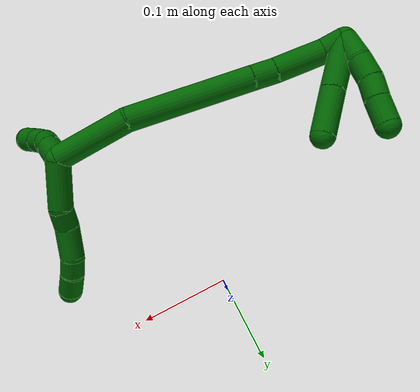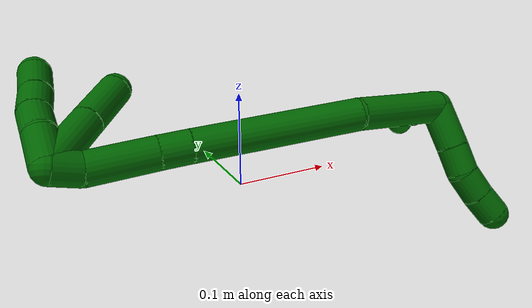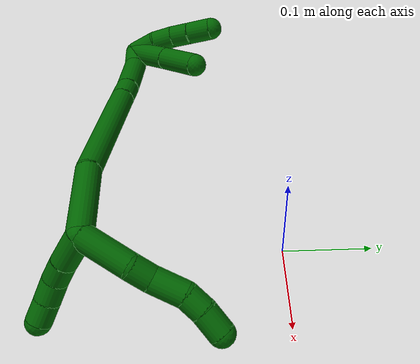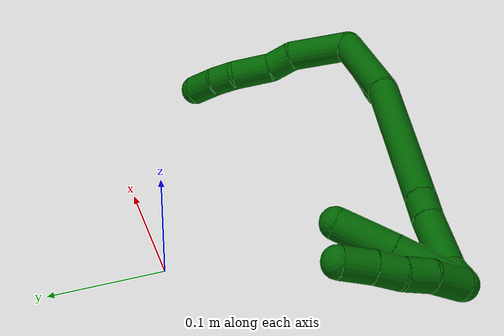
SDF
<sdf version="1.7">
 <world name="default">
  <model name="6">
   <static>0</static>
   <link name="6">
    <collision name="collision-cylinder-e_1_2_8">
     <pose>0.003341 0.02377 0.007497 -1.26528 0.133237 -0.097752</pose>
     <geometry><cylinder><radius>0.0125</radius><length>0.050293</length></cylinder></geometry>
     <surface>
      <friction><ode><mu>1.16</mu><mu2>1.16</mu2><slip1>0</slip1><slip2>0</slip2></ode></friction>
      <contact><ode><kp>1e+06</kp><kd>1</kd><max_vel>0</max_vel><min_depth>0.001</min_depth></ode></contact>
     </surface>
    </collision>
    <visual name="visual-cylinder-e_1_2_8">
     <pose>0.003341 0.02377 0.007497 -1.26528 0.133237 -0.097752</pose>
     <geometry><cylinder><radius>0.0125</radius><length>0.050293</length></cylinder></geometry>
     <material><ambient>0 0.392157 0.003922 1</ambient></material>
    </visual>
    <collision name="collision-cylinder-e_2_8_9">
     <pose>0.006174 0.05832 0.015476 -1.52605 -0.047003 0.044946</pose>
     <geometry><cylinder><radius>0.0125</radius><length>0.021607</length></cylinder></geometry>
     <surface>
      <friction><ode><mu>1.16</mu><mu2>1.16</mu2><slip1>0</slip1><slip2>0</slip2></ode></friction>
      <contact><ode><kp>1e+06</kp><kd>1</kd><max_vel>0</max_vel><min_depth>0.001</min_depth></ode></contact>
     </surface>
    </collision>
    <visual name="visual-cylinder-e_2_8_9">
     <pose>0.006174 0.05832 0.015476 -1.52605 -0.047003 0.044946</pose>
     <geometry><cylinder><radius>0.0125</radius><length>0.021607</length></cylinder></geometry>
     <material><ambient>0 0.392157 0.003922 1</ambient></material>
    </visual>
    <collision name="collision-cylinder-e_3_9_10">
     <pose>0.005834 0.084606 0.02141 -1.23273 0.010248 -0.00726</pose>
     <geometry><cylinder><radius>0.0125</radius><length>0.032873</length></cylinder></geometry>
     <surface>
      <friction><ode><mu>1.16</mu><mu2>1.16</mu2><slip1>0</slip1><slip2>0</slip2></ode></friction>
      <contact><ode><kp>1e+06</kp><kd>1</kd><max_vel>0</max_vel><min_depth>0.001</min_depth></ode></contact>
     </surface>
    </collision>
    <visual name="visual-cylinder-e_3_9_10">
     <pose>0.005834 0.084606 0.02141 -1.23273 0.010248 -0.00726</pose>
     <geometry><cylinder><radius>0.0125</radius><length>0.032873</length></cylinder></geometry>
     <material><ambient>0 0.392157 0.003922 1</ambient></material>
    </visual>
    <collision name="collision-cylinder-e_4_10_11">
     <pose>0.008197 0.109857 0.027868 -1.46784 0.220306 -0.198867</pose>
     <geometry><cylinder><radius>0.0125</radius><length>0.020079</length></cylinder></geometry>
     <surface>
      <friction><ode><mu>1.16</mu><mu2>1.16</mu2><slip1>0</slip1><slip2>0</slip2></ode></friction>
      <contact><ode><kp>1e+06</kp><kd>1</kd><max_vel>0</max_vel><min_depth>0.001</min_depth></ode></contact>
     </surface>
    </collision>
    <visual name="visual-cylinder-e_4_10_11">
     <pose>0.008197 0.109857 0.027868 -1.46784 0.220306 -0.198867</pose>
     <geometry><cylinder><radius>0.0125</radius><length>0.020079</length></cylinder></geometry>
     <material><ambient>0 0.392157 0.003922 1</ambient></material>
    </visual>
    <collision name="collision-cylinder-e_5_11_6">
     <pose>0.01416 0.131585 0.028336 -1.61573 0.304454 -0.318219</pose>
     <geometry><cylinder><radius>0.0125</radius><length>0.025147</length></cylinder></geometry>
     <surface>
      <friction><ode><mu>1.16</mu><mu2>1.16</mu2><slip1>0</slip1><slip2>0</slip2></ode></friction>
      <contact><ode><kp>1e+06</kp><kd>1</kd><max_vel>0</max_vel><min_depth>0.001</min_depth></ode></contact>
     </surface>
    </collision>
    <visual name="visual-cylinder-e_5_11_6">
     <pose>0.01416 0.131585 0.028336 -1.61573 0.304454 -0.318219</pose>
     <geometry><cylinder><radius>0.0125</radius><length>0.025147</length></cylinder></geometry>
     <material><ambient>0 0.392157 0.003922 1</ambient></material>
    </visual>
    <collision name="collision-cylinder-e_1_2_12">
     <pose>0.006359 0.002322 -0.015688 -2.99465 0.381359 -2.41298</pose>
     <geometry><cylinder><radius>0.0125</radius><length>0.034174</length></cylinder></geometry>
     <surface>
      <friction><ode><mu>1.16</mu><mu2>1.16</mu2><slip1>0</slip1><slip2>0</slip2></ode></friction>
      <contact><ode><kp>1e+06</kp><kd>1</kd><max_vel>0</max_vel><min_depth>0.001</min_depth></ode></contact>
     </surface>
    </collision>
    <visual name="visual-cylinder-e_1_2_12">
     <pose>0.006359 0.002322 -0.015688 -2.99465 0.381359 -2.41298</pose>
     <geometry><cylinder><radius>0.0125</radius><length>0.034174</length></cylinder></geometry>
     <material><ambient>0 0.392157 0.003922 1</ambient></material>
    </visual>
    <collision name="collision-cylinder-e_2_12_13">
     <pose>0.016797 0.006765 -0.041586 -2.93681 0.372833 -2.14391</pose>
     <geometry><cylinder><radius>0.0125</radius><length>0.022392</length></cylinder></geometry>
     <surface>
      <friction><ode><mu>1.16</mu><mu2>1.16</mu2><slip1>0</slip1><slip2>0</slip2></ode></friction>
      <contact><ode><kp>1e+06</kp><kd>1</kd><max_vel>0</max_vel><min_depth>0.001</min_depth></ode></contact>
     </surface>
    </collision>
    <visual name="visual-cylinder-e_2_12_13">
     <pose>0.016797 0.006765 -0.041586 -2.93681 0.372833 -2.14391</pose>
     <geometry><cylinder><radius>0.0125</radius><length>0.022392</length></cylinder></geometry>
     <material><ambient>0 0.392157 0.003922 1</ambient></material>
    </visual>
    <collision name="collision-cylinder-e_3_13_14">
     <pose>0.027451 0.011868 -0.06013 -2.79792 0.63886 -2.17518</pose>
     <geometry><cylinder><radius>0.0125</radius><length>0.022054</length></cylinder></geometry>
     <surface>
      <friction><ode><mu>1.16</mu><mu2>1.16</mu2><slip1>0</slip1><slip2>0</slip2></ode></friction>
      <contact><ode><kp>1e+06</kp><kd>1</kd><max_vel>0</max_vel><min_depth>0.001</min_depth></ode></contact>
     </surface>
    </collision>
    <visual name="visual-cylinder-e_3_13_14">
     <pose>0.027451 0.011868 -0.06013 -2.79792 0.63886 -2.17518</pose>
     <geometry><cylinder><radius>0.0125</radius><length>0.022054</length></cylinder></geometry>
     <material><ambient>0 0.392157 0.003922 1</ambient></material>
    </visual>
    <collision name="collision-cylinder-e_4_14_5">
     <pose>0.041163 0.0176 -0.075932 -2.78886 0.731094 -2.27005</pose>
     <geometry><cylinder><radius>0.0125</radius><length>0.02138</length></cylinder></geometry>
     <surface>
      <friction><ode><mu>1.16</mu><mu2>1.16</mu2><slip1>0</slip1><slip2>0</slip2></ode></friction>
      <contact><ode><kp>1e+06</kp><kd>1</kd><max_vel>0</max_vel><min_depth>0.001</min_depth></ode></contact>
     </surface>
    </collision>
    <visual name="visual-cylinder-e_4_14_5">
     <pose>0.041163 0.0176 -0.075932 -2.78886 0.731094 -2.27005</pose>
     <geometry><cylinder><radius>0.0125</radius><length>0.02138</length></cylinder></geometry>
     <material><ambient>0 0.392157 0.003922 1</ambient></material>
    </visual>
    <collision name="collision-cylinder-e_1_2_15">
     <pose>-0.035187 -0.012161 -0.007016 2.09408 -1.19114 -1.72994</pose>
     <geometry><cylinder><radius>0.0125</radius><length>0.075769</length></cylinder></geometry>
     <surface>
      <friction><ode><mu>1.16</mu><mu2>1.16</mu2><slip1>0</slip1><slip2>0</slip2></ode></friction>
      <contact><ode><kp>1e+06</kp><kd>1</kd><max_vel>0</max_vel><min_depth>0.001</min_depth></ode></contact>
     </surface>
    </collision>
    <visual name="visual-cylinder-e_1_2_15">
     <pose>-0.035187 -0.012161 -0.007016 2.09408 -1.19114 -1.72994</pose>
     <geometry><cylinder><radius>0.0125</radius><length>0.075769</length></cylinder></geometry>
     <material><ambient>0 0.392157 0.003922 1</ambient></material>
    </visual>
    <collision name="collision-cylinder-e_2_15_16">
     <pose>-0.132202 -0.030613 -0.027931 2.71656 -1.32888 -2.60395</pose>
     <geometry><cylinder><radius>0.0125</radius><length>0.127366</length></cylinder></geometry>
     <surface>
      <friction><ode><mu>1.16</mu><mu2>1.16</mu2><slip1>0</slip1><slip2>0</slip2></ode></friction>
      <contact><ode><kp>1e+06</kp><kd>1</kd><max_vel>0</max_vel><min_depth>0.001</min_depth></ode></contact>
     </surface>
    </collision>
    <visual name="visual-cylinder-e_2_15_16">
     <pose>-0.132202 -0.030613 -0.027931 2.71656 -1.32888 -2.60395</pose>
     <geometry><cylinder><radius>0.0125</radius><length>0.127366</length></cylinder></geometry>
     <material><ambient>0 0.392157 0.003922 1</ambient></material>
    </visual>
    <collision name="collision-cylinder-e_3_16_17">
     <pose>-0.205223 -0.037884 -0.044445 2.78302 -1.32628 -2.68565</pose>
     <geometry><cylinder><radius>0.0125</radius><length>0.023072</length></cylinder></geometry>
     <surface>
      <friction><ode><mu>1.16</mu><mu2>1.16</mu2><slip1>0</slip1><slip2>0</slip2></ode></friction>
      <contact><ode><kp>1e+06</kp><kd>1</kd><max_vel>0</max_vel><min_depth>0.001</min_depth></ode></contact>
     </surface>
    </collision>
    <visual name="visual-cylinder-e_3_16_17">
     <pose>-0.205223 -0.037884 -0.044445 2.78302 -1.32628 -2.68565</pose>
     <geometry><cylinder><radius>0.0125</radius><length>0.023072</length></cylinder></geometry>
     <material><ambient>0 0.392157 0.003922 1</ambient></material>
    </visual>
    <collision name="collision-cylinder-e_4_17_18">
     <pose>-0.241098 -0.04258 -0.053582 2.62378 -1.27557 -2.45515</pose>
     <geometry><cylinder><radius>0.0125</radius><length>0.051596</length></cylinder></geometry>
     <surface>
      <friction><ode><mu>1.16</mu><mu2>1.16</mu2><slip1>0</slip1><slip2>0</slip2></ode></friction>
      <contact><ode><kp>1e+06</kp><kd>1</kd><max_vel>0</max_vel><min_depth>0.001</min_depth></ode></contact>
     </surface>
    </collision>
    <visual name="visual-cylinder-e_4_17_18">
     <pose>-0.241098 -0.04258 -0.053582 2.62378 -1.27557 -2.45515</pose>
     <geometry><cylinder><radius>0.0125</radius><length>0.051596</length></cylinder></geometry>
     <material><ambient>0 0.392157 0.003922 1</ambient></material>
    </visual>
    <collision name="collision-cylinder-e_5_18_1">
     <pose>-0.275995 -0.050631 -0.060287 1.61296 -1.16903 -1.20816</pose>
     <geometry><cylinder><radius>0.0125</radius><length>0.022198</length></cylinder></geometry>
     <surface>
      <friction><ode><mu>1.16</mu><mu2>1.16</mu2><slip1>0</slip1><slip2>0</slip2></ode></friction>
      <contact><ode><kp>1e+06</kp><kd>1</kd><max_vel>0</max_vel><min_depth>0.001</min_depth></ode></contact>
     </surface>
    </collision>
    <visual name="visual-cylinder-e_5_18_1">
     <pose>-0.275995 -0.050631 -0.060287 1.61296 -1.16903 -1.20816</pose>
     <geometry><cylinder><radius>0.0125</radius><length>0.022198</length></cylinder></geometry>
     <material><ambient>0 0.392157 0.003922 1</ambient></material>
    </visual>
    <collision name="collision-cylinder-e_1_1_19">
     <pose>-0.276677 -0.039352 -0.040836 -0.671901 0.363153 -0.128045</pose>
     <geometry><cylinder><radius>0.0125</radius><length>0.053673</length></cylinder></geometry>
     <surface>
      <friction><ode><mu>1.16</mu><mu2>1.16</mu2><slip1>0</slip1><slip2>0</slip2></ode></friction>
      <contact><ode><kp>1e+06</kp><kd>1</kd><max_vel>0</max_vel><min_depth>0.001</min_depth></ode></contact>
     </surface>
    </collision>
    <visual name="visual-cylinder-e_1_1_19">
     <pose>-0.276677 -0.039352 -0.040836 -0.671901 0.363153 -0.128045</pose>
     <geometry><cylinder><radius>0.0125</radius><length>0.053673</length></cylinder></geometry>
     <material><ambient>0 0.392157 0.003922 1</ambient></material>
    </visual>
    <collision name="collision-cylinder-e_2_19_4">
     <pose>-0.259277 -0.00961 -0.004615 -0.705437 0.346495 -0.128663</pose>
     <geometry><cylinder><radius>0.0125</radius><length>0.046327</length></cylinder></geometry>
     <surface>
      <friction><ode><mu>1.16</mu><mu2>1.16</mu2><slip1>0</slip1><slip2>0</slip2></ode></friction>
      <contact><ode><kp>1e+06</kp><kd>1</kd><max_vel>0</max_vel><min_depth>0.001</min_depth></ode></contact>
     </surface>
    </collision>
    <visual name="visual-cylinder-e_2_19_4">
     <pose>-0.259277 -0.00961 -0.004615 -0.705437 0.346495 -0.128663</pose>
     <geometry><cylinder><radius>0.0125</radius><length>0.046327</length></cylinder></geometry>
     <material><ambient>0 0.392157 0.003922 1</ambient></material>
    </visual>
    <collision name="collision-cylinder-e_1_1_20">
     <pose>-0.290394 -0.049704 -0.048011 -0.399739 -0.300063 0.061226</pose>
     <geometry><cylinder><radius>0.0125</radius><length>0.028315</length></cylinder></geometry>
     <surface>
      <friction><ode><mu>1.16</mu><mu2>1.16</mu2><slip1>0</slip1><slip2>0</slip2></ode></friction>
      <contact><ode><kp>1e+06</kp><kd>1</kd><max_vel>0</max_vel><min_depth>0.001</min_depth></ode></contact>
     </surface>
    </collision>
    <visual name="visual-cylinder-e_1_1_20">
     <pose>-0.290394 -0.049704 -0.048011 -0.399739 -0.300063 0.061226</pose>
     <geometry><cylinder><radius>0.0125</radius><length>0.028315</length></cylinder></geometry>
     <material><ambient>0 0.392157 0.003922 1</ambient></material>
    </visual>
    <collision name="collision-cylinder-e_2_20_21">
     <pose>-0.298174 -0.037997 -0.026517 -0.619487 -0.31329 0.101009</pose>
     <geometry><cylinder><radius>0.0125</radius><length>0.02333</length></cylinder></geometry>
     <surface>
      <friction><ode><mu>1.16</mu><mu2>1.16</mu2><slip1>0</slip1><slip2>0</slip2></ode></friction>
      <contact><ode><kp>1e+06</kp><kd>1</kd><max_vel>0</max_vel><min_depth>0.001</min_depth></ode></contact>
     </surface>
    </collision>
    <visual name="visual-cylinder-e_2_20_21">
     <pose>-0.298174 -0.037997 -0.026517 -0.619487 -0.31329 0.101009</pose>
     <geometry><cylinder><radius>0.0125</radius><length>0.02333</length></cylinder></geometry>
     <material><ambient>0 0.392157 0.003922 1</ambient></material>
    </visual>
    <collision name="collision-cylinder-e_3_21_22">
     <pose>-0.302899 -0.025384 -0.008638 -0.609117 -0.104398 0.032843</pose>
     <geometry><cylinder><radius>0.0125</radius><length>0.021685</length></cylinder></geometry>
     <surface>
      <friction><ode><mu>1.16</mu><mu2>1.16</mu2><slip1>0</slip1><slip2>0</slip2></ode></friction>
      <contact><ode><kp>1e+06</kp><kd>1</kd><max_vel>0</max_vel><min_depth>0.001</min_depth></ode></contact>
     </surface>
    </collision>
    <visual name="visual-cylinder-e_3_21_22">
     <pose>-0.302899 -0.025384 -0.008638 -0.609117 -0.104398 0.032843</pose>
     <geometry><cylinder><radius>0.0125</radius><length>0.021685</length></cylinder></geometry>
     <material><ambient>0 0.392157 0.003922 1</ambient></material>
    </visual>
    <collision name="collision-cylinder-e_4_22_3">
     <pose>-0.306534 -0.011318 0.010655 -0.647113 -0.189005 0.063549</pose>
     <geometry><cylinder><radius>0.0125</radius><length>0.026671</length></cylinder></geometry>
     <surface>
      <friction><ode><mu>1.16</mu><mu2>1.16</mu2><slip1>0</slip1><slip2>0</slip2></ode></friction>
      <contact><ode><kp>1e+06</kp><kd>1</kd><max_vel>0</max_vel><min_depth>0.001</min_depth></ode></contact>
     </surface>
    </collision>
    <visual name="visual-cylinder-e_4_22_3">
     <pose>-0.306534 -0.011318 0.010655 -0.647113 -0.189005 0.063549</pose>
     <geometry><cylinder><radius>0.0125</radius><length>0.026671</length></cylinder></geometry>
     <material><ambient>0 0.392157 0.003922 1</ambient></material>
    </visual>
    <collision name="collision-sphere-3">
     <pose>-0.30904 -0.003422 0.021105 0 -0 0</pose>
     <geometry><sphere><radius>0.0125</radius></sphere></geometry>
     <surface>
      <friction><ode><mu>1.16</mu><mu2>1.16</mu2><slip1>0</slip1><slip2>0</slip2></ode></friction>
      <contact><ode><kp>1e+06</kp><kd>1</kd><max_vel>0</max_vel><min_depth>0.001</min_depth></ode></contact>
     </surface>
    </collision>
    <visual name="visual-sphere-3">
     <pose>-0.30904 -0.003422 0.021105 0 -0 0</pose>
     <geometry><sphere><radius>0.0125</radius></sphere></geometry>
     <material><ambient>0 0.392157 0.003922 1</ambient></material>
    </visual>
    <collision name="collision-sphere-22">
     <pose>-0.304029 -0.019215 0.000206 0 -0 0</pose>
     <geometry><sphere><radius>0.0125</radius></sphere></geometry>
     <surface>
      <friction><ode><mu>1.16</mu><mu2>1.16</mu2><slip1>0</slip1><slip2>0</slip2></ode></friction>
      <contact><ode><kp>1e+06</kp><kd>1</kd><max_vel>0</max_vel><min_depth>0.001</min_depth></ode></contact>
     </surface>
    </collision>
    <visual name="visual-sphere-22">
     <pose>-0.304029 -0.019215 0.000206 0 -0 0</pose>
     <geometry><sphere><radius>0.0125</radius></sphere></geometry>
     <material><ambient>0 0.392157 0.003922 1</ambient></material>
    </visual>
    <collision name="collision-sphere-21">
     <pose>-0.301769 -0.031554 -0.017482 0 -0 0</pose>
     <geometry><sphere><radius>0.0125</radius></sphere></geometry>
     <surface>
      <friction><ode><mu>1.16</mu><mu2>1.16</mu2><slip1>0</slip1><slip2>0</slip2></ode></friction>
      <contact><ode><kp>1e+06</kp><kd>1</kd><max_vel>0</max_vel><min_depth>0.001</min_depth></ode></contact>
     </surface>
    </collision>
    <visual name="visual-sphere-21">
     <pose>-0.301769 -0.031554 -0.017482 0 -0 0</pose>
     <geometry><sphere><radius>0.0125</radius></sphere></geometry>
     <material><ambient>0 0.392157 0.003922 1</ambient></material>
    </visual>
    <collision name="collision-sphere-20">
     <pose>-0.294579 -0.04444 -0.035553 0 -0 0</pose>
     <geometry><sphere><radius>0.0125</radius></sphere></geometry>
     <surface>
      <friction><ode><mu>1.16</mu><mu2>1.16</mu2><slip1>0</slip1><slip2>0</slip2></ode></friction>
      <contact><ode><kp>1e+06</kp><kd>1</kd><max_vel>0</max_vel><min_depth>0.001</min_depth></ode></contact>
     </surface>
    </collision>
    <visual name="visual-sphere-20">
     <pose>-0.294579 -0.04444 -0.035553 0 -0 0</pose>
     <geometry><sphere><radius>0.0125</radius></sphere></geometry>
     <material><ambient>0 0.392157 0.003922 1</ambient></material>
    </visual>
    <collision name="collision-sphere-4">
     <pose>-0.251411 0.004515 0.011971 0 -0 0</pose>
     <geometry><sphere><radius>0.0125</radius></sphere></geometry>
     <surface>
      <friction><ode><mu>1.16</mu><mu2>1.16</mu2><slip1>0</slip1><slip2>0</slip2></ode></friction>
      <contact><ode><kp>1e+06</kp><kd>1</kd><max_vel>0</max_vel><min_depth>0.001</min_depth></ode></contact>
     </surface>
    </collision>
    <visual name="visual-sphere-4">
     <pose>-0.251411 0.004515 0.011971 0 -0 0</pose>
     <geometry><sphere><radius>0.0125</radius></sphere></geometry>
     <material><ambient>0 0.392157 0.003922 1</ambient></material>
    </visual>
    <collision name="collision-sphere-6">
     <pose>0.017929 0.143568 0.027798 0 -0 0</pose>
     <geometry><sphere><radius>0.0125</radius></sphere></geometry>
     <surface>
      <friction><ode><mu>1.16</mu><mu2>1.16</mu2><slip1>0</slip1><slip2>0</slip2></ode></friction>
      <contact><ode><kp>1e+06</kp><kd>1</kd><max_vel>0</max_vel><min_depth>0.001</min_depth></ode></contact>
     </surface>
    </collision>
    <visual name="visual-sphere-6">
     <pose>0.017929 0.143568 0.027798 0 -0 0</pose>
     <geometry><sphere><radius>0.0125</radius></sphere></geometry>
     <material><ambient>0 0.392157 0.003922 1</ambient></material>
    </visual>
    <collision name="collision-sphere-11">
     <pose>0.010391 0.119602 0.028875 0 -0 0</pose>
     <geometry><sphere><radius>0.0125</radius></sphere></geometry>
     <surface>
      <friction><ode><mu>1.16</mu><mu2>1.16</mu2><slip1>0</slip1><slip2>0</slip2></ode></friction>
      <contact><ode><kp>1e+06</kp><kd>1</kd><max_vel>0</max_vel><min_depth>0.001</min_depth></ode></contact>
     </surface>
    </collision>
    <visual name="visual-sphere-11">
     <pose>0.010391 0.119602 0.028875 0 -0 0</pose>
     <geometry><sphere><radius>0.0125</radius></sphere></geometry>
     <material><ambient>0 0.392157 0.003922 1</ambient></material>
    </visual>
    <collision name="collision-sphere-10">
     <pose>0.006003 0.100112 0.026861 0 -0 0</pose>
     <geometry><sphere><radius>0.0125</radius></sphere></geometry>
     <surface>
      <friction><ode><mu>1.16</mu><mu2>1.16</mu2><slip1>0</slip1><slip2>0</slip2></ode></friction>
      <contact><ode><kp>1e+06</kp><kd>1</kd><max_vel>0</max_vel><min_depth>0.001</min_depth></ode></contact>
     </surface>
    </collision>
    <visual name="visual-sphere-10">
     <pose>0.006003 0.100112 0.026861 0 -0 0</pose>
     <geometry><sphere><radius>0.0125</radius></sphere></geometry>
     <material><ambient>0 0.392157 0.003922 1</ambient></material>
    </visual>
    <collision name="collision-sphere-9">
     <pose>0.005666 0.0691 0.015959 0 -0 0</pose>
     <geometry><sphere><radius>0.0125</radius></sphere></geometry>
     <surface>
      <friction><ode><mu>1.16</mu><mu2>1.16</mu2><slip1>0</slip1><slip2>0</slip2></ode></friction>
      <contact><ode><kp>1e+06</kp><kd>1</kd><max_vel>0</max_vel><min_depth>0.001</min_depth></ode></contact>
     </surface>
    </collision>
    <visual name="visual-sphere-9">
     <pose>0.005666 0.0691 0.015959 0 -0 0</pose>
     <geometry><sphere><radius>0.0125</radius></sphere></geometry>
     <material><ambient>0 0.392157 0.003922 1</ambient></material>
    </visual>
    <collision name="collision-sphere-2">
     <geometry><sphere><radius>0.0125</radius></sphere></geometry>
     <surface>
      <friction><ode><mu>1.16</mu><mu2>1.16</mu2><slip1>0</slip1><slip2>0</slip2></ode></friction>
      <contact><ode><kp>1e+06</kp><kd>1</kd><max_vel>0</max_vel><min_depth>0.001</min_depth></ode></contact>
     </surface>
    </collision>
    <visual name="visual-sphere-2">
     <geometry><sphere><radius>0.0125</radius></sphere></geometry>
     <material><ambient>0 0.392157 0.003922 1</ambient></material>
    </visual>
    <collision name="collision-sphere-19">
     <pose>-0.267144 -0.023736 -0.021202 0 -0 0</pose>
     <geometry><sphere><radius>0.0125</radius></sphere></geometry>
     <surface>
      <friction><ode><mu>1.16</mu><mu2>1.16</mu2><slip1>0</slip1><slip2>0</slip2></ode></friction>
      <contact><ode><kp>1e+06</kp><kd>1</kd><max_vel>0</max_vel><min_depth>0.001</min_depth></ode></contact>
     </surface>
    </collision>
    <visual name="visual-sphere-19">
     <pose>-0.267144 -0.023736 -0.021202 0 -0 0</pose>
     <geometry><sphere><radius>0.0125</radius></sphere></geometry>
     <material><ambient>0 0.392157 0.003922 1</ambient></material>
    </visual>
    <collision name="collision-sphere-8">
     <pose>0.006681 0.047539 0.014994 0 -0 0</pose>
     <geometry><sphere><radius>0.0125</radius></sphere></geometry>
     <surface>
      <friction><ode><mu>1.16</mu><mu2>1.16</mu2><slip1>0</slip1><slip2>0</slip2></ode></friction>
      <contact><ode><kp>1e+06</kp><kd>1</kd><max_vel>0</max_vel><min_depth>0.001</min_depth></ode></contact>
     </surface>
    </collision>
    <visual name="visual-sphere-8">
     <pose>0.006681 0.047539 0.014994 0 -0 0</pose>
     <geometry><sphere><radius>0.0125</radius></sphere></geometry>
     <material><ambient>0 0.392157 0.003922 1</ambient></material>
    </visual>
    <collision name="collision-sphere-12">
     <pose>0.012719 0.004644 -0.031377 0 -0 0</pose>
     <geometry><sphere><radius>0.0125</radius></sphere></geometry>
     <surface>
      <friction><ode><mu>1.16</mu><mu2>1.16</mu2><slip1>0</slip1><slip2>0</slip2></ode></friction>
      <contact><ode><kp>1e+06</kp><kd>1</kd><max_vel>0</max_vel><min_depth>0.001</min_depth></ode></contact>
     </surface>
    </collision>
    <visual name="visual-sphere-12">
     <pose>0.012719 0.004644 -0.031377 0 -0 0</pose>
     <geometry><sphere><radius>0.0125</radius></sphere></geometry>
     <material><ambient>0 0.392157 0.003922 1</ambient></material>
    </visual>
    <collision name="collision-sphere-13">
     <pose>0.020875 0.008885 -0.051795 0 -0 0</pose>
     <geometry><sphere><radius>0.0125</radius></sphere></geometry>
     <surface>
      <friction><ode><mu>1.16</mu><mu2>1.16</mu2><slip1>0</slip1><slip2>0</slip2></ode></friction>
      <contact><ode><kp>1e+06</kp><kd>1</kd><max_vel>0</max_vel><min_depth>0.001</min_depth></ode></contact>
     </surface>
    </collision>
    <visual name="visual-sphere-13">
     <pose>0.020875 0.008885 -0.051795 0 -0 0</pose>
     <geometry><sphere><radius>0.0125</radius></sphere></geometry>
     <material><ambient>0 0.392157 0.003922 1</ambient></material>
    </visual>
    <collision name="collision-sphere-14">
     <pose>0.034026 0.01485 -0.068464 0 -0 0</pose>
     <geometry><sphere><radius>0.0125</radius></sphere></geometry>
     <surface>
      <friction><ode><mu>1.16</mu><mu2>1.16</mu2><slip1>0</slip1><slip2>0</slip2></ode></friction>
      <contact><ode><kp>1e+06</kp><kd>1</kd><max_vel>0</max_vel><min_depth>0.001</min_depth></ode></contact>
     </surface>
    </collision>
    <visual name="visual-sphere-14">
     <pose>0.034026 0.01485 -0.068464 0 -0 0</pose>
     <geometry><sphere><radius>0.0125</radius></sphere></geometry>
     <material><ambient>0 0.392157 0.003922 1</ambient></material>
    </visual>
    <collision name="collision-sphere-5">
     <pose>0.048301 0.020349 -0.0834 0 -0 0</pose>
     <geometry><sphere><radius>0.0125</radius></sphere></geometry>
     <surface>
      <friction><ode><mu>1.16</mu><mu2>1.16</mu2><slip1>0</slip1><slip2>0</slip2></ode></friction>
      <contact><ode><kp>1e+06</kp><kd>1</kd><max_vel>0</max_vel><min_depth>0.001</min_depth></ode></contact>
     </surface>
    </collision>
    <visual name="visual-sphere-5">
     <pose>0.048301 0.020349 -0.0834 0 -0 0</pose>
     <geometry><sphere><radius>0.0125</radius></sphere></geometry>
     <material><ambient>0 0.392157 0.003922 1</ambient></material>
    </visual>
    <collision name="collision-sphere-15">
     <pose>-0.070373 -0.024323 -0.014033 0 -0 0</pose>
     <geometry><sphere><radius>0.0125</radius></sphere></geometry>
     <surface>
      <friction><ode><mu>1.16</mu><mu2>1.16</mu2><slip1>0</slip1><slip2>0</slip2></ode></friction>
      <contact><ode><kp>1e+06</kp><kd>1</kd><max_vel>0</max_vel><min_depth>0.001</min_depth></ode></contact>
     </surface>
    </collision>
    <visual name="visual-sphere-15">
     <pose>-0.070373 -0.024323 -0.014033 0 -0 0</pose>
     <geometry><sphere><radius>0.0125</radius></sphere></geometry>
     <material><ambient>0 0.392157 0.003922 1</ambient></material>
    </visual>
    <collision name="collision-sphere-16">
     <pose>-0.19403 -0.036904 -0.04183 0 -0 0</pose>
     <geometry><sphere><radius>0.0125</radius></sphere></geometry>
     <surface>
      <friction><ode><mu>1.16</mu><mu2>1.16</mu2><slip1>0</slip1><slip2>0</slip2></ode></friction>
      <contact><ode><kp>1e+06</kp><kd>1</kd><max_vel>0</max_vel><min_depth>0.001</min_depth></ode></contact>
     </surface>
    </collision>
    <visual name="visual-sphere-16">
     <pose>-0.19403 -0.036904 -0.04183 0 -0 0</pose>
     <geometry><sphere><radius>0.0125</radius></sphere></geometry>
     <material><ambient>0 0.392157 0.003922 1</ambient></material>
    </visual>
    <collision name="collision-sphere-17">
     <pose>-0.216416 -0.038864 -0.04706 0 -0 0</pose>
     <geometry><sphere><radius>0.0125</radius></sphere></geometry>
     <surface>
      <friction><ode><mu>1.16</mu><mu2>1.16</mu2><slip1>0</slip1><slip2>0</slip2></ode></friction>
      <contact><ode><kp>1e+06</kp><kd>1</kd><max_vel>0</max_vel><min_depth>0.001</min_depth></ode></contact>
     </surface>
    </collision>
    <visual name="visual-sphere-17">
     <pose>-0.216416 -0.038864 -0.04706 0 -0 0</pose>
     <geometry><sphere><radius>0.0125</radius></sphere></geometry>
     <material><ambient>0 0.392157 0.003922 1</ambient></material>
    </visual>
    <collision name="collision-sphere-18">
     <pose>-0.26578 -0.046295 -0.060104 0 -0 0</pose>
     <geometry><sphere><radius>0.0125</radius></sphere></geometry>
     <surface>
      <friction><ode><mu>1.16</mu><mu2>1.16</mu2><slip1>0</slip1><slip2>0</slip2></ode></friction>
      <contact><ode><kp>1e+06</kp><kd>1</kd><max_vel>0</max_vel><min_depth>0.001</min_depth></ode></contact>
     </surface>
    </collision>
    <visual name="visual-sphere-18">
     <pose>-0.26578 -0.046295 -0.060104 0 -0 0</pose>
     <geometry><sphere><radius>0.0125</radius></sphere></geometry>
     <material><ambient>0 0.392157 0.003922 1</ambient></material>
    </visual>
    <collision name="collision-sphere-1">
     <pose>-0.28621 -0.054967 -0.060469 0 -0 0</pose>
     <geometry><sphere><radius>0.0125</radius></sphere></geometry>
     <surface>
      <friction><ode><mu>1.16</mu><mu2>1.16</mu2><slip1>0</slip1><slip2>0</slip2></ode></friction>
      <contact><ode><kp>1e+06</kp><kd>1</kd><max_vel>0</max_vel><min_depth>0.001</min_depth></ode></contact>
     </surface>
    </collision>
    <visual name="visual-sphere-1">
     <pose>-0.28621 -0.054967 -0.060469 0 -0 0</pose>
     <geometry><sphere><radius>0.0125</radius></sphere></geometry>
     <material><ambient>0 0.392157 0.003922 1</ambient></material>
    </visual>
    <inertial>
     <pose>-0.128662 -0.004131 -0.020311 0 -0 0</pose>
     <mass>0.75</mass>
     <inertia><ixx>-6e-05</ixx><ixy>0</ixy><ixz>0</ixz><iyy>0.000233</iyy><iyz>0</iyz><izz>0.000204</izz></inertia>
    </inertial>
   </link>
   <pose>0.085902 -0.190347 0.131917 -0.627415 0.053614 -0.359426</pose>
  </model>
 </world>
</sdf>
